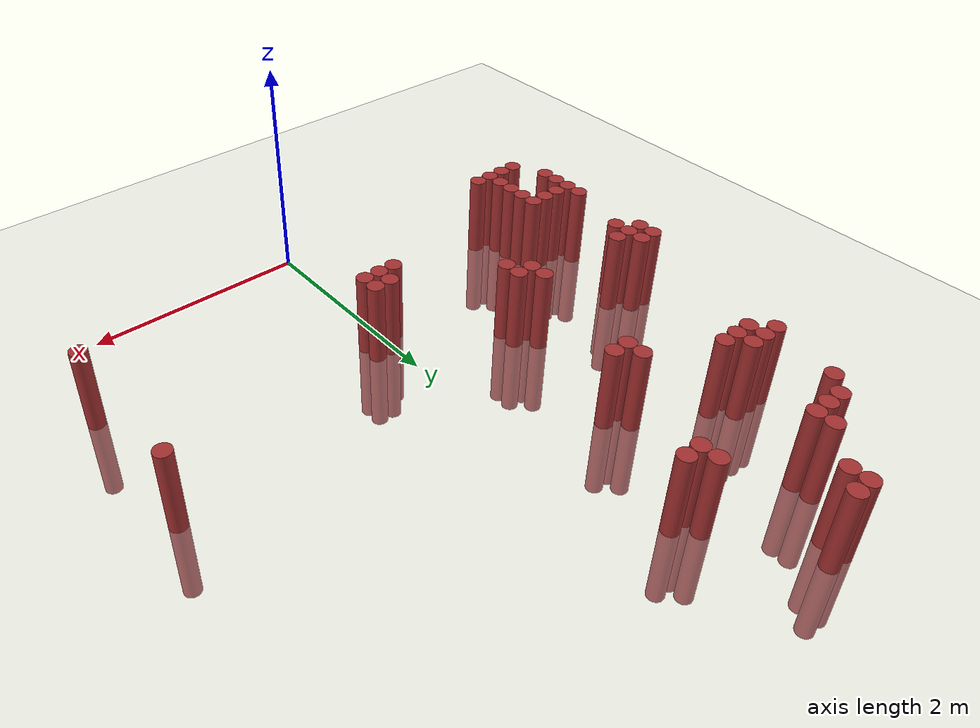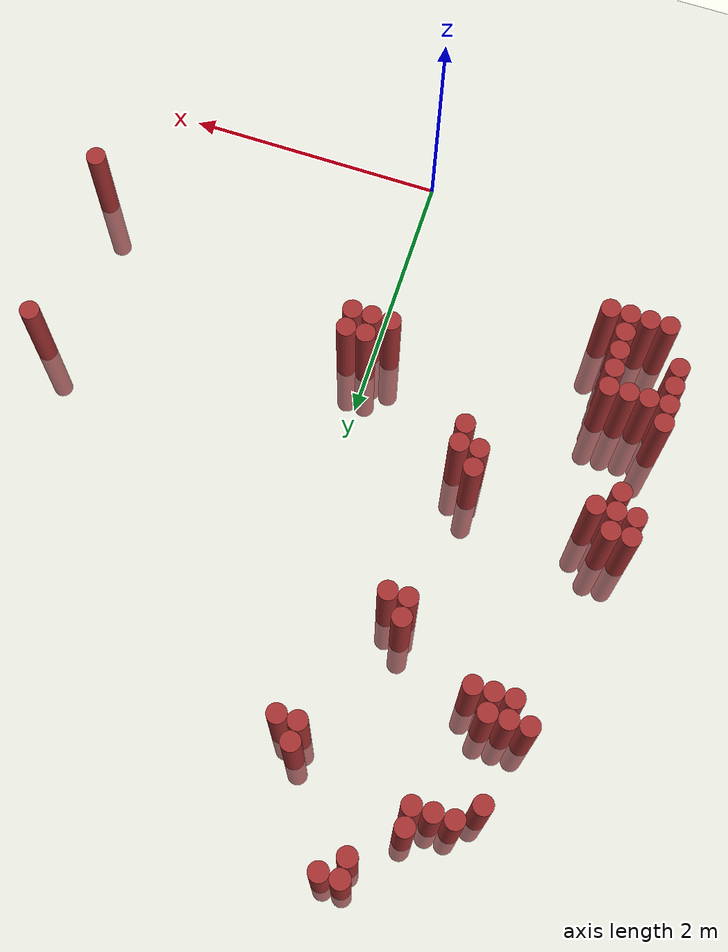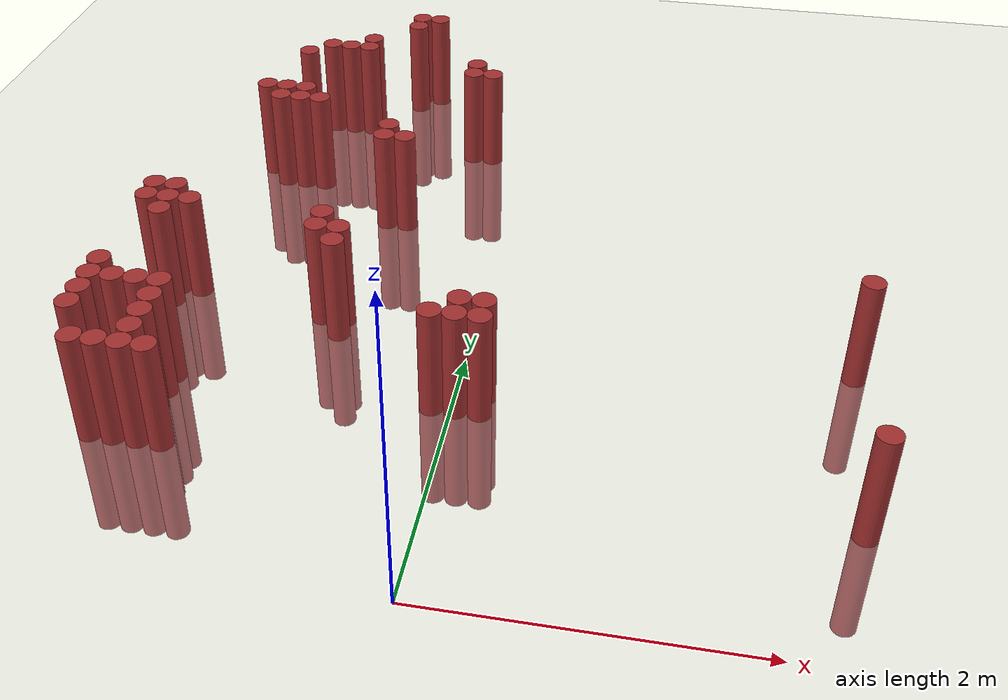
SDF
<sdf version="1.6">
 <world name="default">
  <model name="ground_plane">
   <static>1</static>
   <link name="link">
    <collision name="collision">
     <geometry><plane><normal>0 0 1</normal><size>100 100</size></plane></geometry>
     <surface><friction><ode><mu>100</mu><mu2>50</mu2></ode></friction></surface>
    </collision>
    <visual name="visual">
     <cast_shadows>0</cast_shadows>
     <geometry><plane><normal>0 0 1</normal><size>100 100</size></plane></geometry>
     <material>
      <script><uri>file://media/materials/scripts/gazebo.material</uri><name>Gazebo/Grey</name></script>
     </material>
    </visual>
   </link>
  </model>
  <model name="unit_cylinder_302">
   <static>1</static>
   <pose>-2.225000 1.225000 0.000000 0.000000 0.000000 0.000000</pose>
   <link name="link">
    <inertial>
     <mass>1</mass>
     <inertia><ixx>0.145833</ixx><ixy>0</ixy><ixz>0</ixz><iyy>0.145833</iyy><iyz>0</iyz><izz>0.125</izz></inertia>
    </inertial>
    <collision name="collision">
     <geometry><cylinder><radius>0.075000</radius><length>1.5</length></cylinder></geometry>
    </collision>
    <visual name="visual">
     <geometry><cylinder><radius>0.075000</radius><length>1.5</length></cylinder></geometry>
     <material>
      <ambient>0.648000 0.192000 0.192000 1</ambient>
      <diffuse>0.648000 0.192000 0.192000 1</diffuse>
     </material>
     <material>
      <script><name>Gazebo/Grey</name><uri>file://media/materials/scripts/gazebo.material</uri></script>
     </material>
    </visual>
   </link>
  </model>
  <model name="unit_cylinder_303">
   <static>1</static>
   <pose>-2.225000 1.375000 0.000000 0.000000 0.000000 0.000000</pose>
   <link name="link">
    <inertial>
     <mass>1</mass>
     <inertia><ixx>0.145833</ixx><ixy>0</ixy><ixz>0</ixz><iyy>0.145833</iyy><iyz>0</iyz><izz>0.125</izz></inertia>
    </inertial>
    <collision name="collision">
     <geometry><cylinder><radius>0.075000</radius><length>1.5</length></cylinder></geometry>
    </collision>
    <visual name="visual">
     <geometry><cylinder><radius>0.075000</radius><length>1.5</length></cylinder></geometry>
     <material>
      <ambient>0.648000 0.192000 0.192000 1</ambient>
      <diffuse>0.648000 0.192000 0.192000 1</diffuse>
     </material>
     <material>
      <script><name>Gazebo/Grey</name><uri>file://media/materials/scripts/gazebo.material</uri></script>
     </material>
    </visual>
   </link>
  </model>
  <model name="unit_cylinder_304">
   <static>1</static>
   <pose>-2.225000 1.525000 0.000000 0.000000 0.000000 0.000000</pose>
   <link name="link">
    <inertial>
     <mass>1</mass>
     <inertia><ixx>0.145833</ixx><ixy>0</ixy><ixz>0</ixz><iyy>0.145833</iyy><iyz>0</iyz><izz>0.125</izz></inertia>
    </inertial>
    <collision name="collision">
     <geometry><cylinder><radius>0.075000</radius><length>1.5</length></cylinder></geometry>
    </collision>
    <visual name="visual">
     <geometry><cylinder><radius>0.075000</radius><length>1.5</length></cylinder></geometry>
     <material>
      <ambient>0.648000 0.192000 0.192000 1</ambient>
      <diffuse>0.648000 0.192000 0.192000 1</diffuse>
     </material>
     <material>
      <script><name>Gazebo/Grey</name><uri>file://media/materials/scripts/gazebo.material</uri></script>
     </material>
    </visual>
   </link>
  </model>
  <model name="unit_cylinder_305">
   <static>1</static>
   <pose>-2.225000 1.675000 0.000000 0.000000 0.000000 0.000000</pose>
   <link name="link">
    <inertial>
     <mass>1</mass>
     <inertia><ixx>0.145833</ixx><ixy>0</ixy><ixz>0</ixz><iyy>0.145833</iyy><iyz>0</iyz><izz>0.125</izz></inertia>
    </inertial>
    <collision name="collision">
     <geometry><cylinder><radius>0.075000</radius><length>1.5</length></cylinder></geometry>
    </collision>
    <visual name="visual">
     <geometry><cylinder><radius>0.075000</radius><length>1.5</length></cylinder></geometry>
     <material>
      <ambient>0.648000 0.192000 0.192000 1</ambient>
      <diffuse>0.648000 0.192000 0.192000 1</diffuse>
     </material>
     <material>
      <script><name>Gazebo/Grey</name><uri>file://media/materials/scripts/gazebo.material</uri></script>
     </material>
    </visual>
   </link>
  </model>
  <model name="unit_cylinder_306">
   <static>1</static>
   <pose>-2.225000 2.425000 0.000000 0.000000 0.000000 0.000000</pose>
   <link name="link">
    <inertial>
     <mass>1</mass>
     <inertia><ixx>0.145833</ixx><ixy>0</ixy><ixz>0</ixz><iyy>0.145833</iyy><iyz>0</iyz><izz>0.125</izz></inertia>
    </inertial>
    <collision name="collision">
     <geometry><cylinder><radius>0.075000</radius><length>1.5</length></cylinder></geometry>
    </collision>
    <visual name="visual">
     <geometry><cylinder><radius>0.075000</radius><length>1.5</length></cylinder></geometry>
     <material>
      <ambient>0.648000 0.192000 0.192000 1</ambient>
      <diffuse>0.648000 0.192000 0.192000 1</diffuse>
     </material>
     <material>
      <script><name>Gazebo/Grey</name><uri>file://media/materials/scripts/gazebo.material</uri></script>
     </material>
    </visual>
   </link>
  </model>
  <model name="unit_cylinder_307">
   <static>1</static>
   <pose>-2.225000 2.575000 0.000000 0.000000 0.000000 0.000000</pose>
   <link name="link">
    <inertial>
     <mass>1</mass>
     <inertia><ixx>0.145833</ixx><ixy>0</ixy><ixz>0</ixz><iyy>0.145833</iyy><iyz>0</iyz><izz>0.125</izz></inertia>
    </inertial>
    <collision name="collision">
     <geometry><cylinder><radius>0.075000</radius><length>1.5</length></cylinder></geometry>
    </collision>
    <visual name="visual">
     <geometry><cylinder><radius>0.075000</radius><length>1.5</length></cylinder></geometry>
     <material>
      <ambient>0.648000 0.192000 0.192000 1</ambient>
      <diffuse>0.648000 0.192000 0.192000 1</diffuse>
     </material>
     <material>
      <script><name>Gazebo/Grey</name><uri>file://media/materials/scripts/gazebo.material</uri></script>
     </material>
    </visual>
   </link>
  </model>
  <model name="unit_cylinder_310">
   <static>1</static>
   <pose>-2.075000 0.925000 0.000000 0.000000 0.000000 0.000000</pose>
   <link name="link">
    <inertial>
     <mass>1</mass>
     <inertia><ixx>0.145833</ixx><ixy>0</ixy><ixz>0</ixz><iyy>0.145833</iyy><iyz>0</iyz><izz>0.125</izz></inertia>
    </inertial>
    <collision name="collision">
     <geometry><cylinder><radius>0.075000</radius><length>1.5</length></cylinder></geometry>
    </collision>
    <visual name="visual">
     <geometry><cylinder><radius>0.075000</radius><length>1.5</length></cylinder></geometry>
     <material>
      <ambient>0.648000 0.192000 0.192000 1</ambient>
      <diffuse>0.648000 0.192000 0.192000 1</diffuse>
     </material>
     <material>
      <script><name>Gazebo/Grey</name><uri>file://media/materials/scripts/gazebo.material</uri></script>
     </material>
    </visual>
   </link>
  </model>
  <model name="unit_cylinder_311">
   <static>1</static>
   <pose>-2.075000 1.525000 0.000000 0.000000 0.000000 0.000000</pose>
   <link name="link">
    <inertial>
     <mass>1</mass>
     <inertia><ixx>0.145833</ixx><ixy>0</ixy><ixz>0</ixz><iyy>0.145833</iyy><iyz>0</iyz><izz>0.125</izz></inertia>
    </inertial>
    <collision name="collision">
     <geometry><cylinder><radius>0.075000</radius><length>1.5</length></cylinder></geometry>
    </collision>
    <visual name="visual">
     <geometry><cylinder><radius>0.075000</radius><length>1.5</length></cylinder></geometry>
     <material>
      <ambient>0.648000 0.192000 0.192000 1</ambient>
      <diffuse>0.648000 0.192000 0.192000 1</diffuse>
     </material>
     <material>
      <script><name>Gazebo/Grey</name><uri>file://media/materials/scripts/gazebo.material</uri></script>
     </material>
    </visual>
   </link>
  </model>
  <model name="unit_cylinder_312">
   <static>1</static>
   <pose>-2.075000 2.275000 0.000000 0.000000 0.000000 0.000000</pose>
   <link name="link">
    <inertial>
     <mass>1</mass>
     <inertia><ixx>0.145833</ixx><ixy>0</ixy><ixz>0</ixz><iyy>0.145833</iyy><iyz>0</iyz><izz>0.125</izz></inertia>
    </inertial>
    <collision name="collision">
     <geometry><cylinder><radius>0.075000</radius><length>1.5</length></cylinder></geometry>
    </collision>
    <visual name="visual">
     <geometry><cylinder><radius>0.075000</radius><length>1.5</length></cylinder></geometry>
     <material>
      <ambient>0.648000 0.192000 0.192000 1</ambient>
      <diffuse>0.648000 0.192000 0.192000 1</diffuse>
     </material>
     <material>
      <script><name>Gazebo/Grey</name><uri>file://media/materials/scripts/gazebo.material</uri></script>
     </material>
    </visual>
   </link>
  </model>
  <model name="unit_cylinder_313">
   <static>1</static>
   <pose>-2.075000 2.425000 0.000000 0.000000 0.000000 0.000000</pose>
   <link name="link">
    <inertial>
     <mass>1</mass>
     <inertia><ixx>0.145833</ixx><ixy>0</ixy><ixz>0</ixz><iyy>0.145833</iyy><iyz>0</iyz><izz>0.125</izz></inertia>
    </inertial>
    <collision name="collision">
     <geometry><cylinder><radius>0.075000</radius><length>1.5</length></cylinder></geometry>
    </collision>
    <visual name="visual">
     <geometry><cylinder><radius>0.075000</radius><length>1.5</length></cylinder></geometry>
     <material>
      <ambient>0.648000 0.192000 0.192000 1</ambient>
      <diffuse>0.648000 0.192000 0.192000 1</diffuse>
     </material>
     <material>
      <script><name>Gazebo/Grey</name><uri>file://media/materials/scripts/gazebo.material</uri></script>
     </material>
    </visual>
   </link>
  </model>
  <model name="unit_cylinder_314">
   <static>1</static>
   <pose>-2.075000 2.575000 0.000000 0.000000 0.000000 0.000000</pose>
   <link name="link">
    <inertial>
     <mass>1</mass>
     <inertia><ixx>0.145833</ixx><ixy>0</ixy><ixz>0</ixz><iyy>0.145833</iyy><iyz>0</iyz><izz>0.125</izz></inertia>
    </inertial>
    <collision name="collision">
     <geometry><cylinder><radius>0.075000</radius><length>1.5</length></cylinder></geometry>
    </collision>
    <visual name="visual">
     <geometry><cylinder><radius>0.075000</radius><length>1.5</length></cylinder></geometry>
     <material>
      <ambient>0.648000 0.192000 0.192000 1</ambient>
      <diffuse>0.648000 0.192000 0.192000 1</diffuse>
     </material>
     <material>
      <script><name>Gazebo/Grey</name><uri>file://media/materials/scripts/gazebo.material</uri></script>
     </material>
    </visual>
   </link>
  </model>
  <model name="unit_cylinder_316">
   <static>1</static>
   <pose>-1.925000 0.925000 0.000000 0.000000 0.000000 0.000000</pose>
   <link name="link">
    <inertial>
     <mass>1</mass>
     <inertia><ixx>0.145833</ixx><ixy>0</ixy><ixz>0</ixz><iyy>0.145833</iyy><iyz>0</iyz><izz>0.125</izz></inertia>
    </inertial>
    <collision name="collision">
     <geometry><cylinder><radius>0.075000</radius><length>1.5</length></cylinder></geometry>
    </collision>
    <visual name="visual">
     <geometry><cylinder><radius>0.075000</radius><length>1.5</length></cylinder></geometry>
     <material>
      <ambient>0.648000 0.192000 0.192000 1</ambient>
      <diffuse>0.648000 0.192000 0.192000 1</diffuse>
     </material>
     <material>
      <script><name>Gazebo/Grey</name><uri>file://media/materials/scripts/gazebo.material</uri></script>
     </material>
    </visual>
   </link>
  </model>
  <model name="unit_cylinder_317">
   <static>1</static>
   <pose>-1.925000 1.525000 0.000000 0.000000 0.000000 0.000000</pose>
   <link name="link">
    <inertial>
     <mass>1</mass>
     <inertia><ixx>0.145833</ixx><ixy>0</ixy><ixz>0</ixz><iyy>0.145833</iyy><iyz>0</iyz><izz>0.125</izz></inertia>
    </inertial>
    <collision name="collision">
     <geometry><cylinder><radius>0.075000</radius><length>1.5</length></cylinder></geometry>
    </collision>
    <visual name="visual">
     <geometry><cylinder><radius>0.075000</radius><length>1.5</length></cylinder></geometry>
     <material>
      <ambient>0.648000 0.192000 0.192000 1</ambient>
      <diffuse>0.648000 0.192000 0.192000 1</diffuse>
     </material>
     <material>
      <script><name>Gazebo/Grey</name><uri>file://media/materials/scripts/gazebo.material</uri></script>
     </material>
    </visual>
   </link>
  </model>
  <model name="unit_cylinder_318">
   <static>1</static>
   <pose>-1.925000 2.425000 0.000000 0.000000 0.000000 0.000000</pose>
   <link name="link">
    <inertial>
     <mass>1</mass>
     <inertia><ixx>0.145833</ixx><ixy>0</ixy><ixz>0</ixz><iyy>0.145833</iyy><iyz>0</iyz><izz>0.125</izz></inertia>
    </inertial>
    <collision name="collision">
     <geometry><cylinder><radius>0.075000</radius><length>1.5</length></cylinder></geometry>
    </collision>
    <visual name="visual">
     <geometry><cylinder><radius>0.075000</radius><length>1.5</length></cylinder></geometry>
     <material>
      <ambient>0.648000 0.192000 0.192000 1</ambient>
      <diffuse>0.648000 0.192000 0.192000 1</diffuse>
     </material>
     <material>
      <script><name>Gazebo/Grey</name><uri>file://media/materials/scripts/gazebo.material</uri></script>
     </material>
    </visual>
   </link>
  </model>
  <model name="unit_cylinder_319">
   <static>1</static>
   <pose>-1.925000 4.075000 0.000000 0.000000 0.000000 0.000000</pose>
   <link name="link">
    <inertial>
     <mass>1</mass>
     <inertia><ixx>0.145833</ixx><ixy>0</ixy><ixz>0</ixz><iyy>0.145833</iyy><iyz>0</iyz><izz>0.125</izz></inertia>
    </inertial>
    <collision name="collision">
     <geometry><cylinder><radius>0.075000</radius><length>1.5</length></cylinder></geometry>
    </collision>
    <visual name="visual">
     <geometry><cylinder><radius>0.075000</radius><length>1.5</length></cylinder></geometry>
     <material>
      <ambient>0.648000 0.192000 0.192000 1</ambient>
      <diffuse>0.648000 0.192000 0.192000 1</diffuse>
     </material>
     <material>
      <script><name>Gazebo/Grey</name><uri>file://media/materials/scripts/gazebo.material</uri></script>
     </material>
    </visual>
   </link>
  </model>
  <model name="unit_cylinder_325">
   <static>1</static>
   <pose>-1.775000 0.925000 0.000000 0.000000 0.000000 0.000000</pose>
   <link name="link">
    <inertial>
     <mass>1</mass>
     <inertia><ixx>0.145833</ixx><ixy>0</ixy><ixz>0</ixz><iyy>0.145833</iyy><iyz>0</iyz><izz>0.125</izz></inertia>
    </inertial>
    <collision name="collision">
     <geometry><cylinder><radius>0.075000</radius><length>1.5</length></cylinder></geometry>
    </collision>
    <visual name="visual">
     <geometry><cylinder><radius>0.075000</radius><length>1.5</length></cylinder></geometry>
     <material>
      <ambient>0.648000 0.192000 0.192000 1</ambient>
      <diffuse>0.648000 0.192000 0.192000 1</diffuse>
     </material>
     <material>
      <script><name>Gazebo/Grey</name><uri>file://media/materials/scripts/gazebo.material</uri></script>
     </material>
    </visual>
   </link>
  </model>
  <model name="unit_cylinder_326">
   <static>1</static>
   <pose>-1.775000 1.075000 0.000000 0.000000 0.000000 0.000000</pose>
   <link name="link">
    <inertial>
     <mass>1</mass>
     <inertia><ixx>0.145833</ixx><ixy>0</ixy><ixz>0</ixz><iyy>0.145833</iyy><iyz>0</iyz><izz>0.125</izz></inertia>
    </inertial>
    <collision name="collision">
     <geometry><cylinder><radius>0.075000</radius><length>1.5</length></cylinder></geometry>
    </collision>
    <visual name="visual">
     <geometry><cylinder><radius>0.075000</radius><length>1.5</length></cylinder></geometry>
     <material>
      <ambient>0.648000 0.192000 0.192000 1</ambient>
      <diffuse>0.648000 0.192000 0.192000 1</diffuse>
     </material>
     <material>
      <script><name>Gazebo/Grey</name><uri>file://media/materials/scripts/gazebo.material</uri></script>
     </material>
    </visual>
   </link>
  </model>
  <model name="unit_cylinder_327">
   <static>1</static>
   <pose>-1.775000 1.225000 0.000000 0.000000 0.000000 0.000000</pose>
   <link name="link">
    <inertial>
     <mass>1</mass>
     <inertia><ixx>0.145833</ixx><ixy>0</ixy><ixz>0</ixz><iyy>0.145833</iyy><iyz>0</iyz><izz>0.125</izz></inertia>
    </inertial>
    <collision name="collision">
     <geometry><cylinder><radius>0.075000</radius><length>1.5</length></cylinder></geometry>
    </collision>
    <visual name="visual">
     <geometry><cylinder><radius>0.075000</radius><length>1.5</length></cylinder></geometry>
     <material>
      <ambient>0.648000 0.192000 0.192000 1</ambient>
      <diffuse>0.648000 0.192000 0.192000 1</diffuse>
     </material>
     <material>
      <script><name>Gazebo/Grey</name><uri>file://media/materials/scripts/gazebo.material</uri></script>
     </material>
    </visual>
   </link>
  </model>
  <model name="unit_cylinder_328">
   <static>1</static>
   <pose>-1.775000 1.375000 0.000000 0.000000 0.000000 0.000000</pose>
   <link name="link">
    <inertial>
     <mass>1</mass>
     <inertia><ixx>0.145833</ixx><ixy>0</ixy><ixz>0</ixz><iyy>0.145833</iyy><iyz>0</iyz><izz>0.125</izz></inertia>
    </inertial>
    <collision name="collision">
     <geometry><cylinder><radius>0.075000</radius><length>1.5</length></cylinder></geometry>
    </collision>
    <visual name="visual">
     <geometry><cylinder><radius>0.075000</radius><length>1.5</length></cylinder></geometry>
     <material>
      <ambient>0.648000 0.192000 0.192000 1</ambient>
      <diffuse>0.648000 0.192000 0.192000 1</diffuse>
     </material>
     <material>
      <script><name>Gazebo/Grey</name><uri>file://media/materials/scripts/gazebo.material</uri></script>
     </material>
    </visual>
   </link>
  </model>
  <model name="unit_cylinder_329">
   <static>1</static>
   <pose>-1.775000 1.525000 0.000000 0.000000 0.000000 0.000000</pose>
   <link name="link">
    <inertial>
     <mass>1</mass>
     <inertia><ixx>0.145833</ixx><ixy>0</ixy><ixz>0</ixz><iyy>0.145833</iyy><iyz>0</iyz><izz>0.125</izz></inertia>
    </inertial>
    <collision name="collision">
     <geometry><cylinder><radius>0.075000</radius><length>1.5</length></cylinder></geometry>
    </collision>
    <visual name="visual">
     <geometry><cylinder><radius>0.075000</radius><length>1.5</length></cylinder></geometry>
     <material>
      <ambient>0.648000 0.192000 0.192000 1</ambient>
      <diffuse>0.648000 0.192000 0.192000 1</diffuse>
     </material>
     <material>
      <script><name>Gazebo/Grey</name><uri>file://media/materials/scripts/gazebo.material</uri></script>
     </material>
    </visual>
   </link>
  </model>
  <model name="unit_cylinder_330">
   <static>1</static>
   <pose>-1.775000 3.925000 0.000000 0.000000 0.000000 0.000000</pose>
   <link name="link">
    <inertial>
     <mass>1</mass>
     <inertia><ixx>0.145833</ixx><ixy>0</ixy><ixz>0</ixz><iyy>0.145833</iyy><iyz>0</iyz><izz>0.125</izz></inertia>
    </inertial>
    <collision name="collision">
     <geometry><cylinder><radius>0.075000</radius><length>1.5</length></cylinder></geometry>
    </collision>
    <visual name="visual">
     <geometry><cylinder><radius>0.075000</radius><length>1.5</length></cylinder></geometry>
     <material>
      <ambient>0.648000 0.192000 0.192000 1</ambient>
      <diffuse>0.648000 0.192000 0.192000 1</diffuse>
     </material>
     <material>
      <script><name>Gazebo/Grey</name><uri>file://media/materials/scripts/gazebo.material</uri></script>
     </material>
    </visual>
   </link>
  </model>
  <model name="unit_cylinder_331">
   <static>1</static>
   <pose>-1.775000 4.075000 0.000000 0.000000 0.000000 0.000000</pose>
   <link name="link">
    <inertial>
     <mass>1</mass>
     <inertia><ixx>0.145833</ixx><ixy>0</ixy><ixz>0</ixz><iyy>0.145833</iyy><iyz>0</iyz><izz>0.125</izz></inertia>
    </inertial>
    <collision name="collision">
     <geometry><cylinder><radius>0.075000</radius><length>1.5</length></cylinder></geometry>
    </collision>
    <visual name="visual">
     <geometry><cylinder><radius>0.075000</radius><length>1.5</length></cylinder></geometry>
     <material>
      <ambient>0.648000 0.192000 0.192000 1</ambient>
      <diffuse>0.648000 0.192000 0.192000 1</diffuse>
     </material>
     <material>
      <script><name>Gazebo/Grey</name><uri>file://media/materials/scripts/gazebo.material</uri></script>
     </material>
    </visual>
   </link>
  </model>
  <model name="unit_cylinder_332">
   <static>1</static>
   <pose>-1.775000 4.675000 0.000000 0.000000 0.000000 0.000000</pose>
   <link name="link">
    <inertial>
     <mass>1</mass>
     <inertia><ixx>0.145833</ixx><ixy>0</ixy><ixz>0</ixz><iyy>0.145833</iyy><iyz>0</iyz><izz>0.125</izz></inertia>
    </inertial>
    <collision name="collision">
     <geometry><cylinder><radius>0.075000</radius><length>1.5</length></cylinder></geometry>
    </collision>
    <visual name="visual">
     <geometry><cylinder><radius>0.075000</radius><length>1.5</length></cylinder></geometry>
     <material>
      <ambient>0.648000 0.192000 0.192000 1</ambient>
      <diffuse>0.648000 0.192000 0.192000 1</diffuse>
     </material>
     <material>
      <script><name>Gazebo/Grey</name><uri>file://media/materials/scripts/gazebo.material</uri></script>
     </material>
    </visual>
   </link>
  </model>
  <model name="unit_cylinder_340">
   <static>1</static>
   <pose>-1.625000 0.925000 0.000000 0.000000 0.000000 0.000000</pose>
   <link name="link">
    <inertial>
     <mass>1</mass>
     <inertia><ixx>0.145833</ixx><ixy>0</ixy><ixz>0</ixz><iyy>0.145833</iyy><iyz>0</iyz><izz>0.125</izz></inertia>
    </inertial>
    <collision name="collision">
     <geometry><cylinder><radius>0.075000</radius><length>1.5</length></cylinder></geometry>
    </collision>
    <visual name="visual">
     <geometry><cylinder><radius>0.075000</radius><length>1.5</length></cylinder></geometry>
     <material>
      <ambient>0.648000 0.192000 0.192000 1</ambient>
      <diffuse>0.648000 0.192000 0.192000 1</diffuse>
     </material>
     <material>
      <script><name>Gazebo/Grey</name><uri>file://media/materials/scripts/gazebo.material</uri></script>
     </material>
    </visual>
   </link>
  </model>
  <model name="unit_cylinder_341">
   <static>1</static>
   <pose>-1.625000 3.925000 0.000000 0.000000 0.000000 0.000000</pose>
   <link name="link">
    <inertial>
     <mass>1</mass>
     <inertia><ixx>0.145833</ixx><ixy>0</ixy><ixz>0</ixz><iyy>0.145833</iyy><iyz>0</iyz><izz>0.125</izz></inertia>
    </inertial>
    <collision name="collision">
     <geometry><cylinder><radius>0.075000</radius><length>1.5</length></cylinder></geometry>
    </collision>
    <visual name="visual">
     <geometry><cylinder><radius>0.075000</radius><length>1.5</length></cylinder></geometry>
     <material>
      <ambient>0.648000 0.192000 0.192000 1</ambient>
      <diffuse>0.648000 0.192000 0.192000 1</diffuse>
     </material>
     <material>
      <script><name>Gazebo/Grey</name><uri>file://media/materials/scripts/gazebo.material</uri></script>
     </material>
    </visual>
   </link>
  </model>
  <model name="unit_cylinder_342">
   <static>1</static>
   <pose>-1.625000 4.075000 0.000000 0.000000 0.000000 0.000000</pose>
   <link name="link">
    <inertial>
     <mass>1</mass>
     <inertia><ixx>0.145833</ixx><ixy>0</ixy><ixz>0</ixz><iyy>0.145833</iyy><iyz>0</iyz><izz>0.125</izz></inertia>
    </inertial>
    <collision name="collision">
     <geometry><cylinder><radius>0.075000</radius><length>1.5</length></cylinder></geometry>
    </collision>
    <visual name="visual">
     <geometry><cylinder><radius>0.075000</radius><length>1.5</length></cylinder></geometry>
     <material>
      <ambient>0.648000 0.192000 0.192000 1</ambient>
      <diffuse>0.648000 0.192000 0.192000 1</diffuse>
     </material>
     <material>
      <script><name>Gazebo/Grey</name><uri>file://media/materials/scripts/gazebo.material</uri></script>
     </material>
    </visual>
   </link>
  </model>
  <model name="unit_cylinder_343">
   <static>1</static>
   <pose>-1.625000 4.825000 0.000000 0.000000 0.000000 0.000000</pose>
   <link name="link">
    <inertial>
     <mass>1</mass>
     <inertia><ixx>0.145833</ixx><ixy>0</ixy><ixz>0</ixz><iyy>0.145833</iyy><iyz>0</iyz><izz>0.125</izz></inertia>
    </inertial>
    <collision name="collision">
     <geometry><cylinder><radius>0.075000</radius><length>1.5</length></cylinder></geometry>
    </collision>
    <visual name="visual">
     <geometry><cylinder><radius>0.075000</radius><length>1.5</length></cylinder></geometry>
     <material>
      <ambient>0.648000 0.192000 0.192000 1</ambient>
      <diffuse>0.648000 0.192000 0.192000 1</diffuse>
     </material>
     <material>
      <script><name>Gazebo/Grey</name><uri>file://media/materials/scripts/gazebo.material</uri></script>
     </material>
    </visual>
   </link>
  </model>
  <model name="unit_cylinder_349">
   <static>1</static>
   <pose>-1.475000 3.925000 0.000000 0.000000 0.000000 0.000000</pose>
   <link name="link">
    <inertial>
     <mass>1</mass>
     <inertia><ixx>0.145833</ixx><ixy>0</ixy><ixz>0</ixz><iyy>0.145833</iyy><iyz>0</iyz><izz>0.125</izz></inertia>
    </inertial>
    <collision name="collision">
     <geometry><cylinder><radius>0.075000</radius><length>1.5</length></cylinder></geometry>
    </collision>
    <visual name="visual">
     <geometry><cylinder><radius>0.075000</radius><length>1.5</length></cylinder></geometry>
     <material>
      <ambient>0.648000 0.192000 0.192000 1</ambient>
      <diffuse>0.648000 0.192000 0.192000 1</diffuse>
     </material>
     <material>
      <script><name>Gazebo/Grey</name><uri>file://media/materials/scripts/gazebo.material</uri></script>
     </material>
    </visual>
   </link>
  </model>
  <model name="unit_cylinder_350">
   <static>1</static>
   <pose>-1.475000 4.825000 0.000000 0.000000 0.000000 0.000000</pose>
   <link name="link">
    <inertial>
     <mass>1</mass>
     <inertia><ixx>0.145833</ixx><ixy>0</ixy><ixz>0</ixz><iyy>0.145833</iyy><iyz>0</iyz><izz>0.125</izz></inertia>
    </inertial>
    <collision name="collision">
     <geometry><cylinder><radius>0.075000</radius><length>1.5</length></cylinder></geometry>
    </collision>
    <visual name="visual">
     <geometry><cylinder><radius>0.075000</radius><length>1.5</length></cylinder></geometry>
     <material>
      <ambient>0.648000 0.192000 0.192000 1</ambient>
      <diffuse>0.648000 0.192000 0.192000 1</diffuse>
     </material>
     <material>
      <script><name>Gazebo/Grey</name><uri>file://media/materials/scripts/gazebo.material</uri></script>
     </material>
    </visual>
   </link>
  </model>
  <model name="unit_cylinder_351">
   <static>1</static>
   <pose>-1.325000 4.825000 0.000000 0.000000 0.000000 0.000000</pose>
   <link name="link">
    <inertial>
     <mass>1</mass>
     <inertia><ixx>0.145833</ixx><ixy>0</ixy><ixz>0</ixz><iyy>0.145833</iyy><iyz>0</iyz><izz>0.125</izz></inertia>
    </inertial>
    <collision name="collision">
     <geometry><cylinder><radius>0.075000</radius><length>1.5</length></cylinder></geometry>
    </collision>
    <visual name="visual">
     <geometry><cylinder><radius>0.075000</radius><length>1.5</length></cylinder></geometry>
     <material>
      <ambient>0.648000 0.192000 0.192000 1</ambient>
      <diffuse>0.648000 0.192000 0.192000 1</diffuse>
     </material>
     <material>
      <script><name>Gazebo/Grey</name><uri>file://media/materials/scripts/gazebo.material</uri></script>
     </material>
    </visual>
   </link>
  </model>
  <model name="unit_cylinder_352">
   <static>1</static>
   <pose>-1.325000 4.975000 0.000000 0.000000 0.000000 0.000000</pose>
   <link name="link">
    <inertial>
     <mass>1</mass>
     <inertia><ixx>0.145833</ixx><ixy>0</ixy><ixz>0</ixz><iyy>0.145833</iyy><iyz>0</iyz><izz>0.125</izz></inertia>
    </inertial>
    <collision name="collision">
     <geometry><cylinder><radius>0.075000</radius><length>1.5</length></cylinder></geometry>
    </collision>
    <visual name="visual">
     <geometry><cylinder><radius>0.075000</radius><length>1.5</length></cylinder></geometry>
     <material>
      <ambient>0.648000 0.192000 0.192000 1</ambient>
      <diffuse>0.648000 0.192000 0.192000 1</diffuse>
     </material>
     <material>
      <script><name>Gazebo/Grey</name><uri>file://media/materials/scripts/gazebo.material</uri></script>
     </material>
    </visual>
   </link>
  </model>
  <model name="unit_cylinder_356">
   <static>1</static>
   <pose>-1.025000 2.275000 0.000000 0.000000 0.000000 0.000000</pose>
   <link name="link">
    <inertial>
     <mass>1</mass>
     <inertia><ixx>0.145833</ixx><ixy>0</ixy><ixz>0</ixz><iyy>0.145833</iyy><iyz>0</iyz><izz>0.125</izz></inertia>
    </inertial>
    <collision name="collision">
     <geometry><cylinder><radius>0.075000</radius><length>1.5</length></cylinder></geometry>
    </collision>
    <visual name="visual">
     <geometry><cylinder><radius>0.075000</radius><length>1.5</length></cylinder></geometry>
     <material>
      <ambient>0.648000 0.192000 0.192000 1</ambient>
      <diffuse>0.648000 0.192000 0.192000 1</diffuse>
     </material>
     <material>
      <script><name>Gazebo/Grey</name><uri>file://media/materials/scripts/gazebo.material</uri></script>
     </material>
    </visual>
   </link>
  </model>
  <model name="unit_cylinder_357">
   <static>1</static>
   <pose>-1.025000 2.425000 0.000000 0.000000 0.000000 0.000000</pose>
   <link name="link">
    <inertial>
     <mass>1</mass>
     <inertia><ixx>0.145833</ixx><ixy>0</ixy><ixz>0</ixz><iyy>0.145833</iyy><iyz>0</iyz><izz>0.125</izz></inertia>
    </inertial>
    <collision name="collision">
     <geometry><cylinder><radius>0.075000</radius><length>1.5</length></cylinder></geometry>
    </collision>
    <visual name="visual">
     <geometry><cylinder><radius>0.075000</radius><length>1.5</length></cylinder></geometry>
     <material>
      <ambient>0.648000 0.192000 0.192000 1</ambient>
      <diffuse>0.648000 0.192000 0.192000 1</diffuse>
     </material>
     <material>
      <script><name>Gazebo/Grey</name><uri>file://media/materials/scripts/gazebo.material</uri></script>
     </material>
    </visual>
   </link>
  </model>
  <model name="unit_cylinder_358">
   <static>1</static>
   <pose>-1.025000 5.275000 0.000000 0.000000 0.000000 0.000000</pose>
   <link name="link">
    <inertial>
     <mass>1</mass>
     <inertia><ixx>0.145833</ixx><ixy>0</ixy><ixz>0</ixz><iyy>0.145833</iyy><iyz>0</iyz><izz>0.125</izz></inertia>
    </inertial>
    <collision name="collision">
     <geometry><cylinder><radius>0.075000</radius><length>1.5</length></cylinder></geometry>
    </collision>
    <visual name="visual">
     <geometry><cylinder><radius>0.075000</radius><length>1.5</length></cylinder></geometry>
     <material>
      <ambient>0.648000 0.192000 0.192000 1</ambient>
      <diffuse>0.648000 0.192000 0.192000 1</diffuse>
     </material>
     <material>
      <script><name>Gazebo/Grey</name><uri>file://media/materials/scripts/gazebo.material</uri></script>
     </material>
    </visual>
   </link>
  </model>
  <model name="unit_cylinder_359">
   <static>1</static>
   <pose>-1.025000 5.425000 0.000000 0.000000 0.000000 0.000000</pose>
   <link name="link">
    <inertial>
     <mass>1</mass>
     <inertia><ixx>0.145833</ixx><ixy>0</ixy><ixz>0</ixz><iyy>0.145833</iyy><iyz>0</iyz><izz>0.125</izz></inertia>
    </inertial>
    <collision name="collision">
     <geometry><cylinder><radius>0.075000</radius><length>1.5</length></cylinder></geometry>
    </collision>
    <visual name="visual">
     <geometry><cylinder><radius>0.075000</radius><length>1.5</length></cylinder></geometry>
     <material>
      <ambient>0.648000 0.192000 0.192000 1</ambient>
      <diffuse>0.648000 0.192000 0.192000 1</diffuse>
     </material>
     <material>
      <script><name>Gazebo/Grey</name><uri>file://media/materials/scripts/gazebo.material</uri></script>
     </material>
    </visual>
   </link>
  </model>
  <model name="unit_cylinder_361">
   <static>1</static>
   <pose>-0.875000 2.125000 0.000000 0.000000 0.000000 0.000000</pose>
   <link name="link">
    <inertial>
     <mass>1</mass>
     <inertia><ixx>0.145833</ixx><ixy>0</ixy><ixz>0</ixz><iyy>0.145833</iyy><iyz>0</iyz><izz>0.125</izz></inertia>
    </inertial>
    <collision name="collision">
     <geometry><cylinder><radius>0.075000</radius><length>1.5</length></cylinder></geometry>
    </collision>
    <visual name="visual">
     <geometry><cylinder><radius>0.075000</radius><length>1.5</length></cylinder></geometry>
     <material>
      <ambient>0.648000 0.192000 0.192000 1</ambient>
      <diffuse>0.648000 0.192000 0.192000 1</diffuse>
     </material>
     <material>
      <script><name>Gazebo/Grey</name><uri>file://media/materials/scripts/gazebo.material</uri></script>
     </material>
    </visual>
   </link>
  </model>
  <model name="unit_cylinder_362">
   <static>1</static>
   <pose>-0.875000 2.275000 0.000000 0.000000 0.000000 0.000000</pose>
   <link name="link">
    <inertial>
     <mass>1</mass>
     <inertia><ixx>0.145833</ixx><ixy>0</ixy><ixz>0</ixz><iyy>0.145833</iyy><iyz>0</iyz><izz>0.125</izz></inertia>
    </inertial>
    <collision name="collision">
     <geometry><cylinder><radius>0.075000</radius><length>1.5</length></cylinder></geometry>
    </collision>
    <visual name="visual">
     <geometry><cylinder><radius>0.075000</radius><length>1.5</length></cylinder></geometry>
     <material>
      <ambient>0.648000 0.192000 0.192000 1</ambient>
      <diffuse>0.648000 0.192000 0.192000 1</diffuse>
     </material>
     <material>
      <script><name>Gazebo/Grey</name><uri>file://media/materials/scripts/gazebo.material</uri></script>
     </material>
    </visual>
   </link>
  </model>
  <model name="unit_cylinder_363">
   <static>1</static>
   <pose>-0.875000 3.475000 0.000000 0.000000 0.000000 0.000000</pose>
   <link name="link">
    <inertial>
     <mass>1</mass>
     <inertia><ixx>0.145833</ixx><ixy>0</ixy><ixz>0</ixz><iyy>0.145833</iyy><iyz>0</iyz><izz>0.125</izz></inertia>
    </inertial>
    <collision name="collision">
     <geometry><cylinder><radius>0.075000</radius><length>1.5</length></cylinder></geometry>
    </collision>
    <visual name="visual">
     <geometry><cylinder><radius>0.075000</radius><length>1.5</length></cylinder></geometry>
     <material>
      <ambient>0.648000 0.192000 0.192000 1</ambient>
      <diffuse>0.648000 0.192000 0.192000 1</diffuse>
     </material>
     <material>
      <script><name>Gazebo/Grey</name><uri>file://media/materials/scripts/gazebo.material</uri></script>
     </material>
    </visual>
   </link>
  </model>
  <model name="unit_cylinder_364">
   <static>1</static>
   <pose>-0.875000 3.625000 0.000000 0.000000 0.000000 0.000000</pose>
   <link name="link">
    <inertial>
     <mass>1</mass>
     <inertia><ixx>0.145833</ixx><ixy>0</ixy><ixz>0</ixz><iyy>0.145833</iyy><iyz>0</iyz><izz>0.125</izz></inertia>
    </inertial>
    <collision name="collision">
     <geometry><cylinder><radius>0.075000</radius><length>1.5</length></cylinder></geometry>
    </collision>
    <visual name="visual">
     <geometry><cylinder><radius>0.075000</radius><length>1.5</length></cylinder></geometry>
     <material>
      <ambient>0.648000 0.192000 0.192000 1</ambient>
      <diffuse>0.648000 0.192000 0.192000 1</diffuse>
     </material>
     <material>
      <script><name>Gazebo/Grey</name><uri>file://media/materials/scripts/gazebo.material</uri></script>
     </material>
    </visual>
   </link>
  </model>
  <model name="unit_cylinder_365">
   <static>1</static>
   <pose>-0.875000 5.425000 0.000000 0.000000 0.000000 0.000000</pose>
   <link name="link">
    <inertial>
     <mass>1</mass>
     <inertia><ixx>0.145833</ixx><ixy>0</ixy><ixz>0</ixz><iyy>0.145833</iyy><iyz>0</iyz><izz>0.125</izz></inertia>
    </inertial>
    <collision name="collision">
     <geometry><cylinder><radius>0.075000</radius><length>1.5</length></cylinder></geometry>
    </collision>
    <visual name="visual">
     <geometry><cylinder><radius>0.075000</radius><length>1.5</length></cylinder></geometry>
     <material>
      <ambient>0.648000 0.192000 0.192000 1</ambient>
      <diffuse>0.648000 0.192000 0.192000 1</diffuse>
     </material>
     <material>
      <script><name>Gazebo/Grey</name><uri>file://media/materials/scripts/gazebo.material</uri></script>
     </material>
    </visual>
   </link>
  </model>
  <model name="unit_cylinder_368">
   <static>1</static>
   <pose>-0.725000 3.475000 0.000000 0.000000 0.000000 0.000000</pose>
   <link name="link">
    <inertial>
     <mass>1</mass>
     <inertia><ixx>0.145833</ixx><ixy>0</ixy><ixz>0</ixz><iyy>0.145833</iyy><iyz>0</iyz><izz>0.125</izz></inertia>
    </inertial>
    <collision name="collision">
     <geometry><cylinder><radius>0.075000</radius><length>1.5</length></cylinder></geometry>
    </collision>
    <visual name="visual">
     <geometry><cylinder><radius>0.075000</radius><length>1.5</length></cylinder></geometry>
     <material>
      <ambient>0.648000 0.192000 0.192000 1</ambient>
      <diffuse>0.648000 0.192000 0.192000 1</diffuse>
     </material>
     <material>
      <script><name>Gazebo/Grey</name><uri>file://media/materials/scripts/gazebo.material</uri></script>
     </material>
    </visual>
   </link>
  </model>
  <model name="unit_cylinder_371">
   <static>1</static>
   <pose>-0.425000 4.525000 0.000000 0.000000 0.000000 0.000000</pose>
   <link name="link">
    <inertial>
     <mass>1</mass>
     <inertia><ixx>0.145833</ixx><ixy>0</ixy><ixz>0</ixz><iyy>0.145833</iyy><iyz>0</iyz><izz>0.125</izz></inertia>
    </inertial>
    <collision name="collision">
     <geometry><cylinder><radius>0.075000</radius><length>1.5</length></cylinder></geometry>
    </collision>
    <visual name="visual">
     <geometry><cylinder><radius>0.075000</radius><length>1.5</length></cylinder></geometry>
     <material>
      <ambient>0.648000 0.192000 0.192000 1</ambient>
      <diffuse>0.648000 0.192000 0.192000 1</diffuse>
     </material>
     <material>
      <script><name>Gazebo/Grey</name><uri>file://media/materials/scripts/gazebo.material</uri></script>
     </material>
    </visual>
   </link>
  </model>
  <model name="unit_cylinder_372">
   <static>1</static>
   <pose>-0.425000 4.675000 0.000000 0.000000 0.000000 0.000000</pose>
   <link name="link">
    <inertial>
     <mass>1</mass>
     <inertia><ixx>0.145833</ixx><ixy>0</ixy><ixz>0</ixz><iyy>0.145833</iyy><iyz>0</iyz><izz>0.125</izz></inertia>
    </inertial>
    <collision name="collision">
     <geometry><cylinder><radius>0.075000</radius><length>1.5</length></cylinder></geometry>
    </collision>
    <visual name="visual">
     <geometry><cylinder><radius>0.075000</radius><length>1.5</length></cylinder></geometry>
     <material>
      <ambient>0.648000 0.192000 0.192000 1</ambient>
      <diffuse>0.648000 0.192000 0.192000 1</diffuse>
     </material>
     <material>
      <script><name>Gazebo/Grey</name><uri>file://media/materials/scripts/gazebo.material</uri></script>
     </material>
    </visual>
   </link>
  </model>
  <model name="unit_cylinder_375">
   <static>1</static>
   <pose>-0.275000 4.525000 0.000000 0.000000 0.000000 0.000000</pose>
   <link name="link">
    <inertial>
     <mass>1</mass>
     <inertia><ixx>0.145833</ixx><ixy>0</ixy><ixz>0</ixz><iyy>0.145833</iyy><iyz>0</iyz><izz>0.125</izz></inertia>
    </inertial>
    <collision name="collision">
     <geometry><cylinder><radius>0.075000</radius><length>1.5</length></cylinder></geometry>
    </collision>
    <visual name="visual">
     <geometry><cylinder><radius>0.075000</radius><length>1.5</length></cylinder></geometry>
     <material>
      <ambient>0.648000 0.192000 0.192000 1</ambient>
      <diffuse>0.648000 0.192000 0.192000 1</diffuse>
     </material>
     <material>
      <script><name>Gazebo/Grey</name><uri>file://media/materials/scripts/gazebo.material</uri></script>
     </material>
    </visual>
   </link>
  </model>
  <model name="unit_cylinder_380">
   <static>1</static>
   <pose>-0.125000 1.525000 0.000000 0.000000 0.000000 0.000000</pose>
   <link name="link">
    <inertial>
     <mass>1</mass>
     <inertia><ixx>0.145833</ixx><ixy>0</ixy><ixz>0</ixz><iyy>0.145833</iyy><iyz>0</iyz><izz>0.125</izz></inertia>
    </inertial>
    <collision name="collision">
     <geometry><cylinder><radius>0.075000</radius><length>1.5</length></cylinder></geometry>
    </collision>
    <visual name="visual">
     <geometry><cylinder><radius>0.075000</radius><length>1.5</length></cylinder></geometry>
     <material>
      <ambient>0.648000 0.192000 0.192000 1</ambient>
      <diffuse>0.648000 0.192000 0.192000 1</diffuse>
     </material>
     <material>
      <script><name>Gazebo/Grey</name><uri>file://media/materials/scripts/gazebo.material</uri></script>
     </material>
    </visual>
   </link>
  </model>
  <model name="unit_cylinder_386">
   <static>1</static>
   <pose>0.025000 1.525000 0.000000 0.000000 0.000000 0.000000</pose>
   <link name="link">
    <inertial>
     <mass>1</mass>
     <inertia><ixx>0.145833</ixx><ixy>0</ixy><ixz>0</ixz><iyy>0.145833</iyy><iyz>0</iyz><izz>0.125</izz></inertia>
    </inertial>
    <collision name="collision">
     <geometry><cylinder><radius>0.075000</radius><length>1.5</length></cylinder></geometry>
    </collision>
    <visual name="visual">
     <geometry><cylinder><radius>0.075000</radius><length>1.5</length></cylinder></geometry>
     <material>
      <ambient>0.648000 0.192000 0.192000 1</ambient>
      <diffuse>0.648000 0.192000 0.192000 1</diffuse>
     </material>
     <material>
      <script><name>Gazebo/Grey</name><uri>file://media/materials/scripts/gazebo.material</uri></script>
     </material>
    </visual>
   </link>
  </model>
  <model name="unit_cylinder_387">
   <static>1</static>
   <pose>0.025000 1.675000 0.000000 0.000000 0.000000 0.000000</pose>
   <link name="link">
    <inertial>
     <mass>1</mass>
     <inertia><ixx>0.145833</ixx><ixy>0</ixy><ixz>0</ixz><iyy>0.145833</iyy><iyz>0</iyz><izz>0.125</izz></inertia>
    </inertial>
    <collision name="collision">
     <geometry><cylinder><radius>0.075000</radius><length>1.5</length></cylinder></geometry>
    </collision>
    <visual name="visual">
     <geometry><cylinder><radius>0.075000</radius><length>1.5</length></cylinder></geometry>
     <material>
      <ambient>0.648000 0.192000 0.192000 1</ambient>
      <diffuse>0.648000 0.192000 0.192000 1</diffuse>
     </material>
     <material>
      <script><name>Gazebo/Grey</name><uri>file://media/materials/scripts/gazebo.material</uri></script>
     </material>
    </visual>
   </link>
  </model>
  <model name="unit_cylinder_389">
   <static>1</static>
   <pose>0.175000 1.525000 0.000000 0.000000 0.000000 0.000000</pose>
   <link name="link">
    <inertial>
     <mass>1</mass>
     <inertia><ixx>0.145833</ixx><ixy>0</ixy><ixz>0</ixz><iyy>0.145833</iyy><iyz>0</iyz><izz>0.125</izz></inertia>
    </inertial>
    <collision name="collision">
     <geometry><cylinder><radius>0.075000</radius><length>1.5</length></cylinder></geometry>
    </collision>
    <visual name="visual">
     <geometry><cylinder><radius>0.075000</radius><length>1.5</length></cylinder></geometry>
     <material>
      <ambient>0.648000 0.192000 0.192000 1</ambient>
      <diffuse>0.648000 0.192000 0.192000 1</diffuse>
     </material>
     <material>
      <script><name>Gazebo/Grey</name><uri>file://media/materials/scripts/gazebo.material</uri></script>
     </material>
    </visual>
   </link>
  </model>
  <model name="unit_cylinder_390">
   <static>1</static>
   <pose>0.175000 1.675000 0.000000 0.000000 0.000000 0.000000</pose>
   <link name="link">
    <inertial>
     <mass>1</mass>
     <inertia><ixx>0.145833</ixx><ixy>0</ixy><ixz>0</ixz><iyy>0.145833</iyy><iyz>0</iyz><izz>0.125</izz></inertia>
    </inertial>
    <collision name="collision">
     <geometry><cylinder><radius>0.075000</radius><length>1.5</length></cylinder></geometry>
    </collision>
    <visual name="visual">
     <geometry><cylinder><radius>0.075000</radius><length>1.5</length></cylinder></geometry>
     <material>
      <ambient>0.648000 0.192000 0.192000 1</ambient>
      <diffuse>0.648000 0.192000 0.192000 1</diffuse>
     </material>
     <material>
      <script><name>Gazebo/Grey</name><uri>file://media/materials/scripts/gazebo.material</uri></script>
     </material>
    </visual>
   </link>
  </model>
  <model name="unit_cylinder_408">
   <static>1</static>
   <pose>2.425000 0.925000 0.000000 0.000000 0.000000 0.000000</pose>
   <link name="link">
    <inertial>
     <mass>1</mass>
     <inertia><ixx>0.145833</ixx><ixy>0</ixy><ixz>0</ixz><iyy>0.145833</iyy><iyz>0</iyz><izz>0.125</izz></inertia>
    </inertial>
    <collision name="collision">
     <geometry><cylinder><radius>0.075000</radius><length>1.5</length></cylinder></geometry>
    </collision>
    <visual name="visual">
     <geometry><cylinder><radius>0.075000</radius><length>1.5</length></cylinder></geometry>
     <material>
      <ambient>0.648000 0.192000 0.192000 1</ambient>
      <diffuse>0.648000 0.192000 0.192000 1</diffuse>
     </material>
     <material>
      <script><name>Gazebo/Grey</name><uri>file://media/materials/scripts/gazebo.material</uri></script>
     </material>
    </visual>
   </link>
  </model>
  <model name="unit_cylinder_409">
   <static>1</static>
   <pose>2.425000 2.275000 0.000000 0.000000 0.000000 0.000000</pose>
   <link name="link">
    <inertial>
     <mass>1</mass>
     <inertia><ixx>0.145833</ixx><ixy>0</ixy><ixz>0</ixz><iyy>0.145833</iyy><iyz>0</iyz><izz>0.125</izz></inertia>
    </inertial>
    <collision name="collision">
     <geometry><cylinder><radius>0.075000</radius><length>1.5</length></cylinder></geometry>
    </collision>
    <visual name="visual">
     <geometry><cylinder><radius>0.075000</radius><length>1.5</length></cylinder></geometry>
     <material>
      <ambient>0.648000 0.192000 0.192000 1</ambient>
      <diffuse>0.648000 0.192000 0.192000 1</diffuse>
     </material>
     <material>
      <script><name>Gazebo/Grey</name><uri>file://media/materials/scripts/gazebo.material</uri></script>
     </material>
    </visual>
   </link>
  </model>
 </world>
</sdf>
